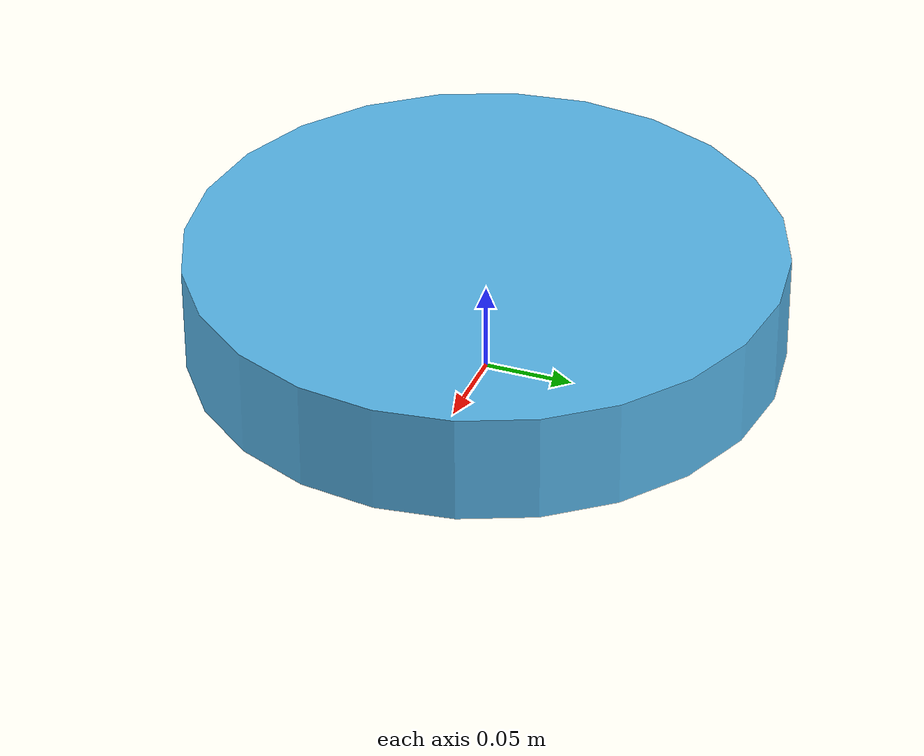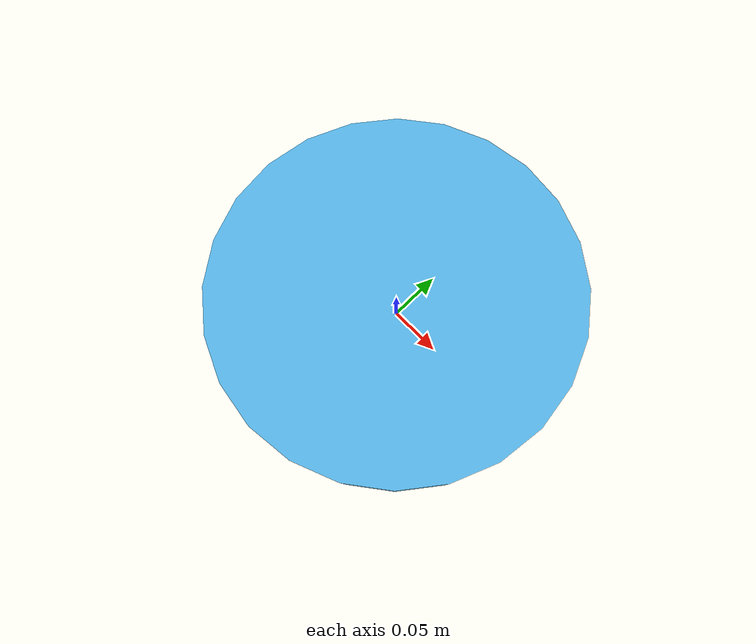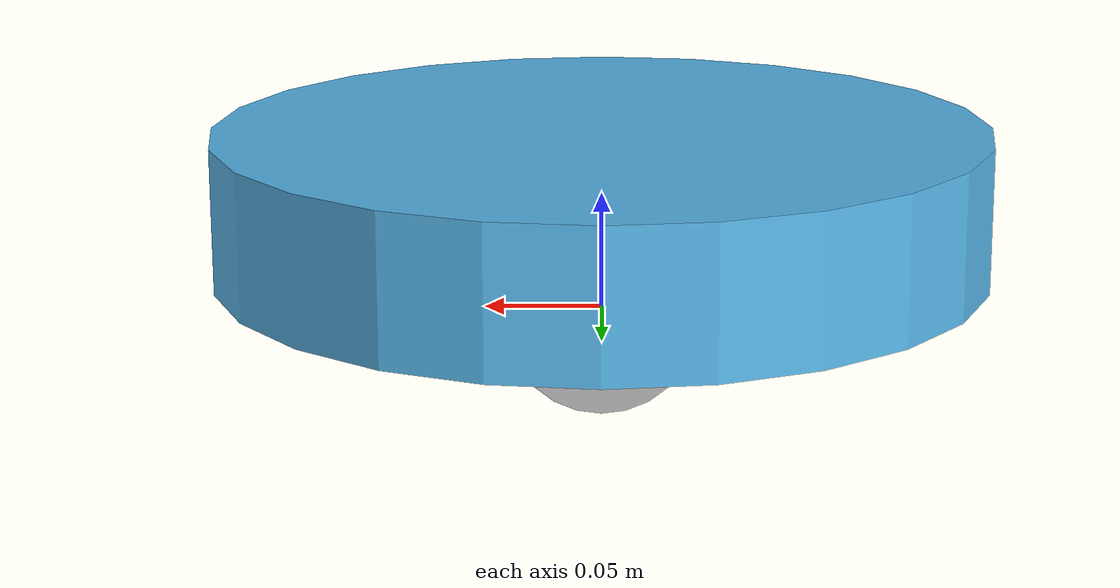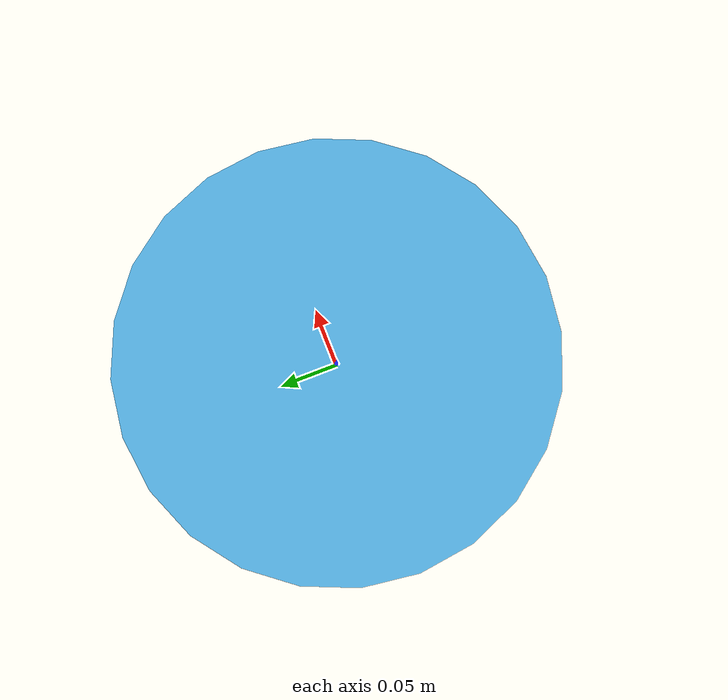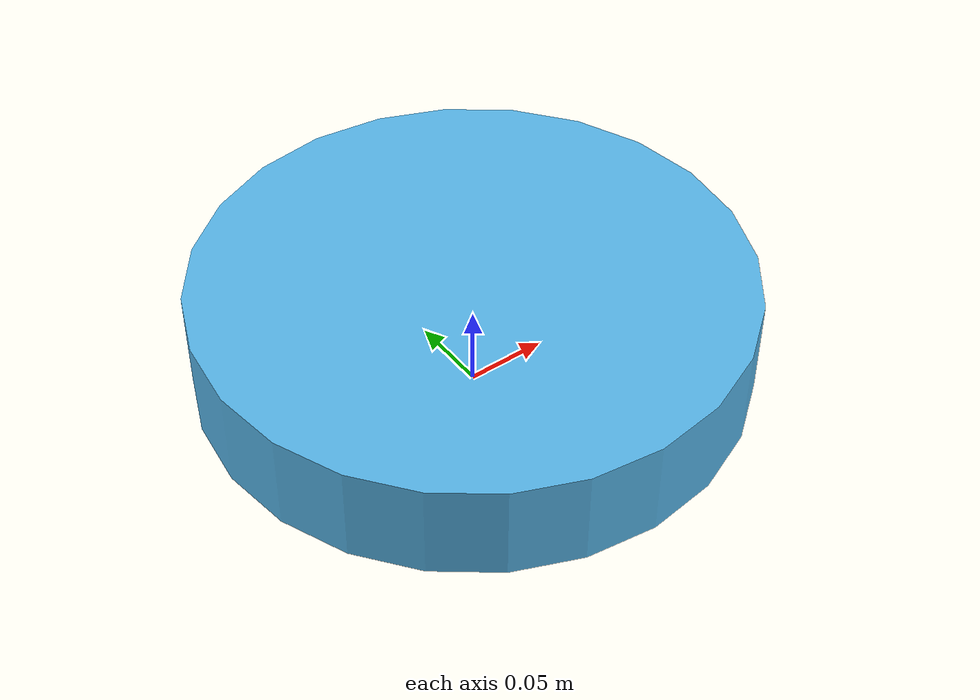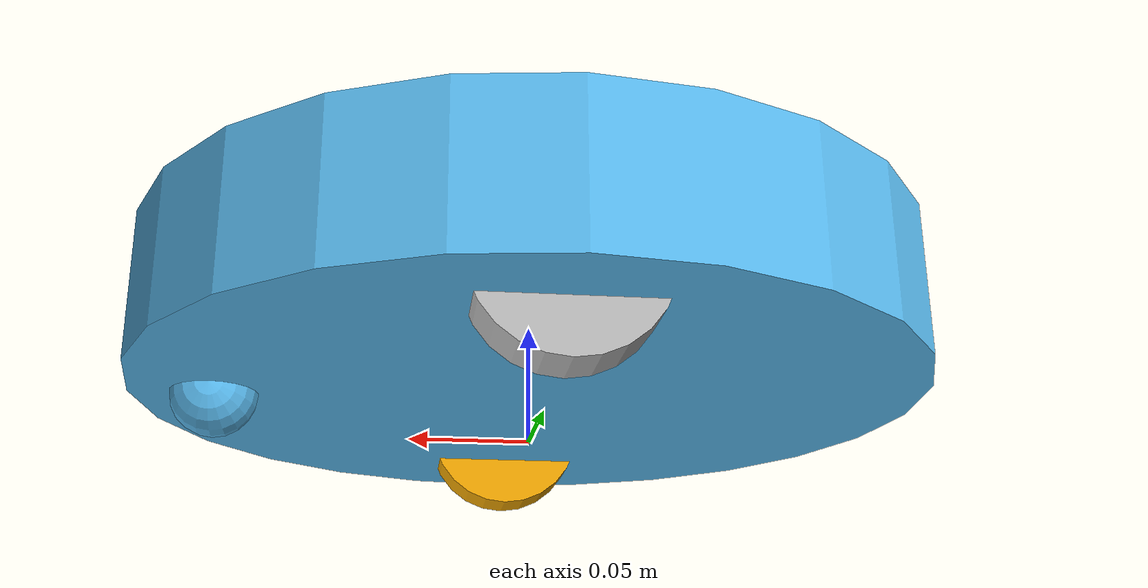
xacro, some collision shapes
<?xml version="1.0"?>
<robot name="create_2" xmlns:xacro="http://ros.org/wiki/xacro">

  <xacro:arg name="gpu" default="false" />
  <xacro:property name="gpu" value="true" />
  <xacro:arg name="organize_cloud" default="false" />
  <xacro:property name="organize_cloud" value="false" />

  <xacro:include filename="$(find create_description)/urdf/create_base.urdf.xacro" />
  <xacro:include filename="$(find create_description)/urdf/create_2_gazebo.urdf.xacro" />

  <xacro:create_base wheel_separation="0.235" base_diameter="0.3485">
    <mesh filename="package://create_description/meshes/create_2.dae" />
  </xacro:create_base>

  <xacro:include filename="$(find create_description)/urdf/rplidar.urdf.xacro" />
</robot>

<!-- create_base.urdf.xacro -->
<robot xmlns:xacro="http://ros.org/wiki/xacro">
  <xacro:property name="PI" value="3.1415926535897931" />

  <xacro:macro name="create_wheel" params="prefix y_offset wheel_radius wheel_width">
    <link name="${prefix}_wheel_link">
      <inertial>
        <origin xyz="0 0 0" />
        <mass value="0.01" />
        <inertia ixx="0.001" ixy="0.0" ixz="0.0" iyy="0.001" iyz="0.0" izz="0.001" />
      </inertial>

      <visual>
        <origin xyz="0 0 0" rpy="0 ${PI/2} ${PI/2}" />
        <geometry>
          <cylinder radius="${wheel_radius}" length="${wheel_width}" />
        </geometry>
      </visual>

      <collision>
        <origin xyz="0 0 0" rpy="0 ${PI/2} ${PI/2}" />
        <geometry>
          <cylinder radius="${wheel_radius}" length="${wheel_width}" />
        </geometry>
      </collision>
    </link>

    <joint name="${prefix}_wheel_joint" type="continuous">
      <origin xyz="0 ${y_offset} 0.015" rpy="0 0 0" />
      <parent link="base_link" />
      <child link="${prefix}_wheel_link" />
      <axis xyz="0 1 0" />
      <dynamics damping="0.2" />
    </joint>
  </xacro:macro>

  <xacro:macro name="create_base"
    params="diffdrive_update_rate:=40 wheel_separation wheel_radius:=0.036 wheel_width:=0.024 wheel_torque:=1.0 wheel_accel:=1.8 mass_kg:=3.5 base_diameter *mesh">
    <xacro:include filename="$(find create_description)/urdf/create_base_gazebo.urdf.xacro" />

    <link name="base_footprint">
      <visual>
        <origin xyz="0 0 0" rpy="0 0 0" />
        <geometry>
          <box size="0.001 0.001 0.001" />
        </geometry>
      </visual>

      <collision>
        <origin xyz="0 0 0.017" rpy="0 0 0" />
        <geometry>
          <box size="0.001 0.001 0.001" />
        </geometry>
      </collision>
    </link>

    <link name="base_link">
      <inertial>
        <mass value="2" />
        <origin xyz="0 0 0.0" />
        <inertia ixx="0.5" ixy="0.0" ixz="0.0" iyy="0.5" iyz="0.0" izz="0.5" />
      </inertial>

      <visual>
        <origin xyz=" 0 0 0.0308" rpy="0 0 0" />
        <geometry>
          <xacro:insert_block name="mesh" />
        </geometry>
      </visual>

      <collision>
        <origin xyz="0.0 0.0 0.0308" rpy="0 0 0" />
        <geometry>
          <cylinder length="0.0611632" radius="0.16495" />
        </geometry>
      </collision>
    </link>

    <link name="wall_sensor_link">
      <inertial>
        <mass value="0.01" />
        <origin xyz="0 0 0" />
        <inertia ixx="0.001" ixy="0.0" ixz="0.0" iyy="0.001" iyz="0.0" izz="0.001" />
      </inertial>
    </link>

    <link name="left_cliff_sensor_link">
      <inertial>
        <mass value="0.01" />
        <origin xyz="0 0 0" />
        <inertia ixx="0.001" ixy="0.0" ixz="0.0" iyy="0.001" iyz="0.0" izz="0.001" />
      </inertial>
    </link>

    <link name="right_cliff_sensor_link">
      <inertial>
        <mass value="0.01" />
        <origin xyz="0 0 0" />
        <inertia ixx="0.001" ixy="0.0" ixz="0.0" iyy="0.001" iyz="0.0" izz="0.001" />
      </inertial>
    </link>

    <link name="leftfront_cliff_sensor_link">
      <inertial>
        <mass value="0.01" />
        <origin xyz="0 0 0" />
        <inertia ixx="0.01" ixy="0.0" ixz="0.0" iyy="0.01" iyz="0.0" izz="0.01" />
      </inertial>
    </link>

    <link name="rightfront_cliff_sensor_link">
      <inertial>
        <mass value="0.01" />
        <origin xyz="0 0 0" />
        <inertia ixx="0.001" ixy="0.0" ixz="0.0" iyy="0.001" iyz="0.0" izz="0.001" />
      </inertial>
    </link>

    <joint name="base_footprint_joint" type="fixed">
      <origin xyz="0 0 0.017" rpy="0 0 0" />
      <parent link="base_footprint" />
      <child link="base_link" />
    </joint>

    <joint name="base_wall_sensor_joint" type="fixed">
      <origin xyz="0.09 -0.120 0.042" rpy="0 0 -1.0" />
      <parent link="base_link" />
      <child link="wall_sensor_link" />
    </joint>

    <joint name="base_left_cliff_sensor_joint" type="fixed">
      <origin xyz="0.07 0.14 0.01" rpy="0 ${PI/2} 0" />
      <parent link="base_link" />
      <child link="left_cliff_sensor_link" />
    </joint>

    <joint name="base_right_cliff_sensor_joint" type="fixed">
      <origin xyz="0.07 -0.14 0.01" rpy="0 ${PI/2} 0" />
      <parent link="base_link" />
      <child link="right_cliff_sensor_link" />
    </joint>

    <joint name="base_leftfront_cliff_sensor_joint" type="fixed">
      <origin xyz="0.15 0.04 0.01" rpy="0 ${PI/2} 0" />
      <parent link="base_link" />
      <child link="leftfront_cliff_sensor_link" />
    </joint>

    <joint name="base_rightfront_cliff_sensor_joint" type="fixed">
      <origin xyz="0.15 -0.04 0.01" rpy="0 ${PI/2} 0" />
      <parent link="base_link" />
      <child link="rightfront_cliff_sensor_link" />
    </joint>

    <xacro:create_wheel prefix="left" y_offset="${wheel_separation / 2}"
      wheel_radius="${wheel_radius}" wheel_width="${wheel_width}" />
    <xacro:create_wheel prefix="right" y_offset="${wheel_separation / -2}"
      wheel_radius="${wheel_radius}" wheel_width="${wheel_width}" />

    <link name="front_wheel_link">
      <inertial>
        <origin xyz="0 0 0" />
        <mass value="0.01" />
        <inertia ixx="0.001" ixy="0.0" ixz="0.0" iyy="0.001" iyz="0.0" izz="0.001" />
      </inertial>

      <visual>
        <origin xyz="0 0 0" rpy="0 ${PI/2} ${PI/2}" />
        <geometry>
          <sphere radius="0.018" />
        </geometry>
      </visual>

      <collision>
        <origin xyz="0 0 0" rpy="0 ${PI/2} ${PI/2}" />
        <geometry>
          <sphere radius="0.018" />
        </geometry>
      </collision>
    </link>

    <!-- fixed because there's no transmission -->
    <joint name="front_castor_joint" type="fixed">
      <origin xyz="0.13 0 0.0" rpy="0 0 0" />
      <parent link="base_link" />
      <child link="front_wheel_link" />
      <axis xyz="0 1 0" />
    </joint>

    <joint name="gyro_joint" type="fixed">
      <axis xyz="0 1 0" />
      <origin xyz="0 0 0.04" rpy="0 0 0" />
      <parent link="base_link" />
      <child link="gyro_link" />
    </joint>
    <link name="gyro_link">
      <inertial>
        <mass value="0.001" />
        <origin xyz="0 0 0" rpy="0 0 0" />
        <inertia ixx="0.0001" ixy="0" ixz="0" iyy="0.000001" iyz="0" izz="0.0001" />
      </inertial>
    </link>

    <!-- Simulation sensors -->
    <xacro:sim_create_base />
  </xacro:macro>
</robot>

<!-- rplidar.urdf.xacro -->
<robot name="sensor_rplidar" xmlns:xacro="http://ros.org/wiki/xacro">
	<!-- Joints and Links, standard URDF stuff -->
	<link name="laser">

		<collision>
			<origin xyz="0 0 0" rpy="0 0 0" />
			<geometry>
				<box size="0.1 0.1 0.1" />
			</geometry>
		</collision>

		<vision>
			<origin xyz="0 0 0.1" rpy="1.5707 0 0" />
			<geometry>
				<box size="0.1 0.1 0.1" />
				<meshfile name="package://create_description/meshes/rplidar.dae" scale="0.001 0.001 0.001" />
			</geometry>
		</vision>

		<inertial>
			<mass value="1e-5" />
			<origin xyz="0 0 0" rpy="0 0 0" />
			<inertia ixx="1e-6" ixy="0" ixz="0" iyy="1e-6" iyz="0" izz="1e-6" />
		</inertial>
	</link>

	<joint name="rplidar_joint" type="fixed">
		<axis xyz="0 1 0" />
		<origin xyz="0 0 0.1" rpy="0 0 0 " />
		<parent link="base_link" />
		<child link="laser" />
	</joint>

	<gazebo reference="laser">

		<sensor name='gpu_lidar' type='gpu_lidar'>
			<ignition_frame_id>laser</ignition_frame_id>

			<topic>scan</topic>
			<update_rate>10</update_rate>
			<lidar>
				<scan>
					<horizontal>
						<samples>360</samples>
						<min_angle>-3.14159</min_angle>
						<max_angle>3.14159</max_angle>
					</horizontal>
				</scan>
				<range>
					<min>0.15</min>
					<max>4.0</max>
					<resolution>0.01</resolution>
				</range>
				<noise>
					<type>gaussian</type>
					<mean>0.0</mean>
					<stddev>0.01</stddev>
				</noise>
			</lidar>
			<visualize>true</visualize>
		</sensor>
	</gazebo>
</robot>
